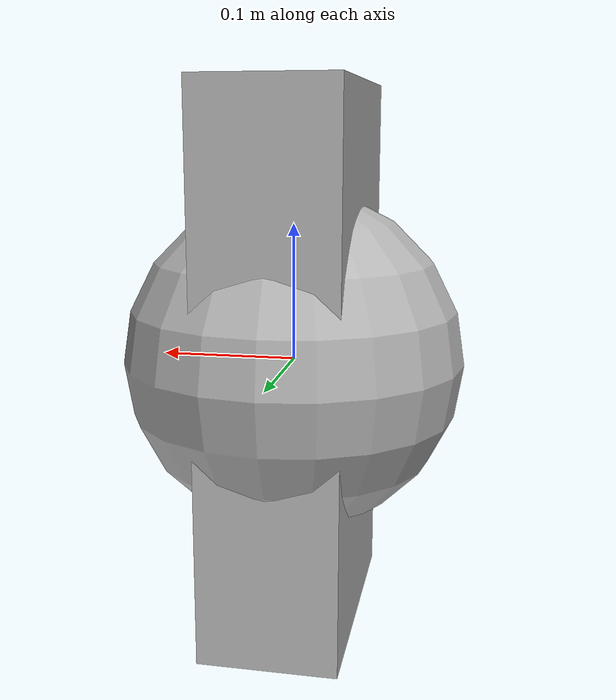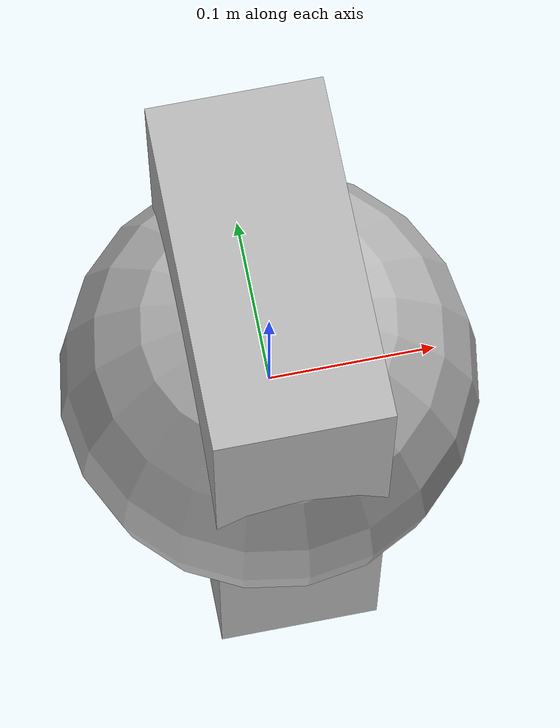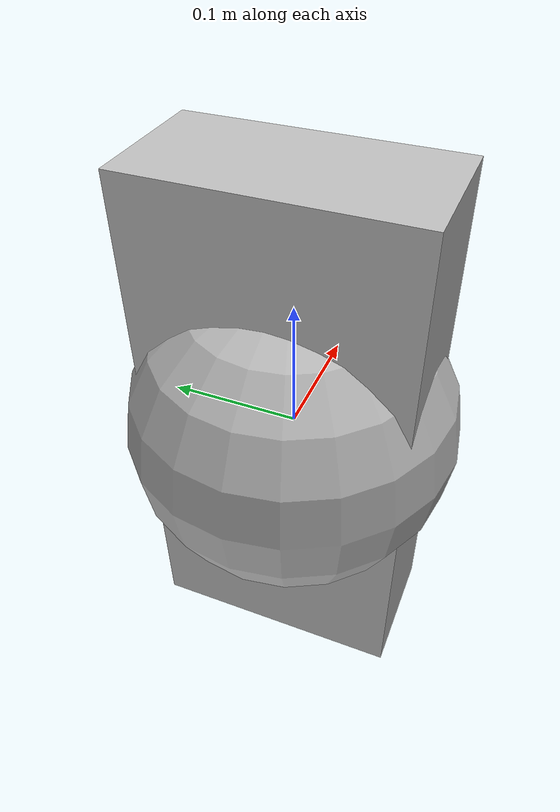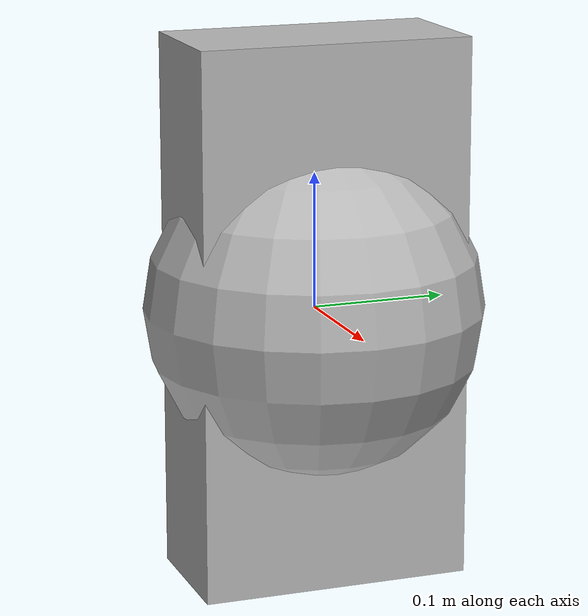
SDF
<?xml version='1.0' encoding='utf-8'?>
<sdf version="1.7">
  <model name="first_model">
    <link name="link">
      <visual name="link_visual">
        <geometry>
          <box>
            <size>0.1 0.2 0.4</size>
          </box>
        </geometry>
      </visual>
      <collision name="link_collision">
        <geometry>
          <box>
            <size>0.1 0.2 0.4</size>
          </box>
        </geometry>
      </collision>
      <inertial>
        <mass>1.23</mass>
        <inertia>
          <ixx>0.0205</ixx>
          <ixy>0</ixy>
          <ixz>0</ixz>
          <iyy>0.017425</iyy>
          <iyz>0</iyz>
          <izz>0.005125</izz>
        </inertia>
      </inertial>
    </link>
  </model>
  <model name="second_model">
    <link name="link">
      <visual name="link_visual">
        <geometry>
          <sphere>
            <radius>0.125</radius>
          </sphere>
        </geometry>
      </visual>
      <collision name="link_collision">
        <geometry>
          <sphere>
            <radius>0.125</radius>
          </sphere>
        </geometry>
      </collision>
      <inertial>
        <mass>1.23</mass>
        <inertia>
          <ixx>0.0076875</ixx>
          <ixy>0</ixy>
          <ixz>0</ixz>
          <iyy>0.0076875</iyy>
          <iyz>0</iyz>
          <izz>0.0076875</izz>
        </inertia>
      </inertial>
    </link>
  </model>
</sdf>
